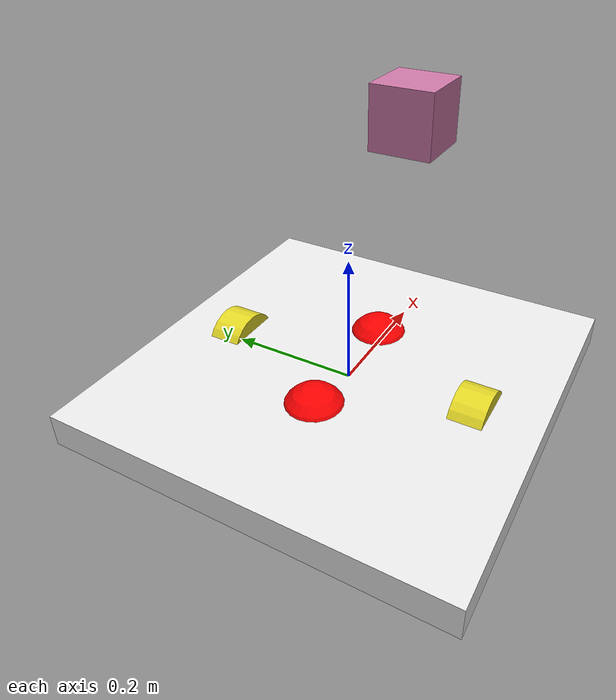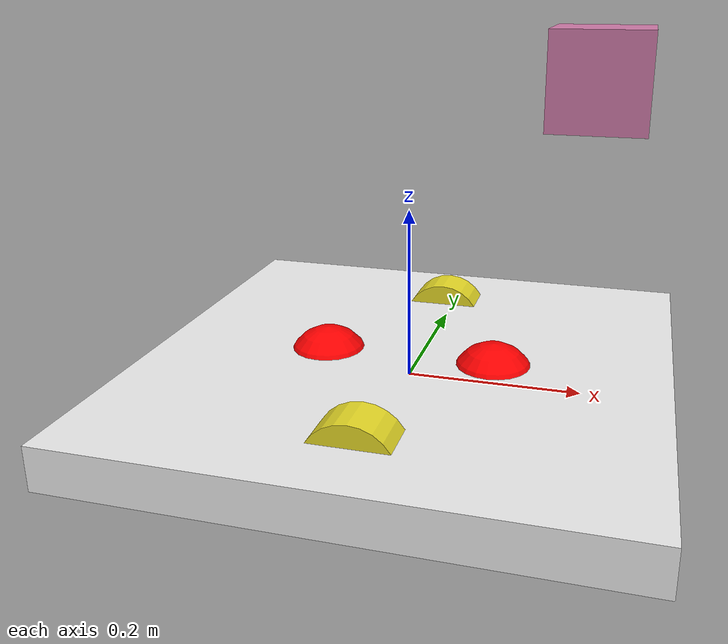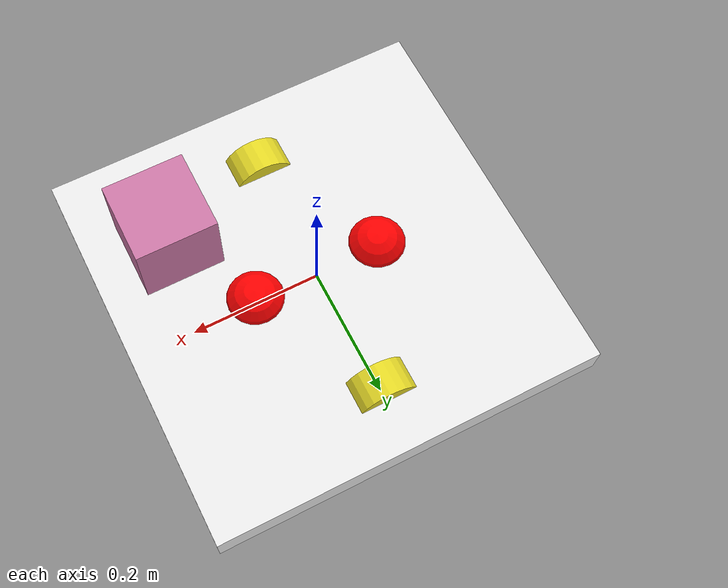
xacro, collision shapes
<?xml version='1.0'?>

<robot name="waiter_bot" xmlns:xacro="http://www.ros.org/wiki/xacro">

<xacro:property name="camera_link" value="0.01"/>
<xacro:property name="camera_mass" value="0.1"/>

<xacro:include filename="$(find waiter_bot)/urdf/bot.gazebo"/>

  <link name='chassis'>
    <pose>0 0 0 0 0 0</pose>

    <inertial>
      <mass value="1"/>
      <origin xyz="0.0 0 0.0" rpy=" 0 0 0"/>
      <inertia ixx="0.00416" ixy="0" ixz="0" iyy="0.01416" iyz="0" izz="0.0166"/>
    </inertial>

    <collision name='collision'>
    <origin xyz="0.0 0 0.0" rpy=" 0 0 0"/>
      <geometry>
        <box size=".6 .6 .05"/>
      </geometry>
    </collision>

    <visual name='chassis_visual'>
      <origin xyz="-0.205 -0.358 0" rpy="1.57 0 1.57"/>
      <geometry>
        <mesh filename="package://dualwheelbot/meshes/marses_robot.stl" scale="0.001 0.001 0.001"/>
      </geometry>
    </visual>

  </link>

<link name="custer_wheel">
    <inertial>
      <origin xyz="0.0 0.0 0.0" rpy="0.0 0.0 0.0"/>
      <mass value="0.1"/>
      <inertia ixx="0.002" ixy="0.0" ixz="0.0" iyy="0.002" iyz="0.0" izz="0.002"/>
    </inertial>

    <visual name="">
      <origin xyz="0.0 0.0 0.0" rpy="0.0 0.0 0.0"/>
      <geometry>
         <sphere radius="0.05"/>
      </geometry>

      <material name="">
        <color rgba="1.0 0.0 0.0 1.0"/>
        <texture filename=""/>
      </material>
    </visual>

    <collision>
      <origin xyz="0.0 0.0 0.0" rpy="0.0 0.0 0.0"/>
      <geometry>
        <sphere radius="0.05"/>
      </geometry>
    </collision>
  </link>

  <joint name="custer_joint" type="fixed">
    <origin xyz="-0.1 0.0 0" rpy="0.0 0.0 0.0"/>
    <parent link="chassis"/>
    <child link="custer_wheel"/>
    <axis xyz="0.0 0.0 0.0"/>
    <limit lower="0.0" upper="0.0" effort="0.0" velocity="0.0"/>
  </joint>

<link name="custer_wheel2">
    <inertial>
      <origin xyz="0.0 0.0 0.0" rpy="0.0 0.0 0.0"/>
      <mass value="0.1"/>
      <inertia ixx="0.002" ixy="0.0" ixz="0.0" iyy="0.002" iyz="0.0" izz="0.002"/>
    </inertial>

    <visual name="">
      <origin xyz="0.0 0.0 0.0" rpy="0.0 0.0 0.0"/>
      <geometry>
         <sphere radius="0.05"/>
      </geometry>

      <material name="">
        <color rgba="1.0 0.0 0.0 1.0"/>
        <texture filename=""/>
      </material>
    </visual>

    <collision>
      <origin xyz="0.0 0.0 0.0" rpy="0.0 0.0 0.0"/>
      <geometry>
        <sphere radius="0.05"/>
      </geometry>
    </collision>
  </link>

  <joint name="custer_joint2" type="fixed">
    <origin xyz="0.1 0.0 0" rpy="0.0 0.0 0.0"/>
    <parent link="chassis"/>
    <child link="custer_wheel2"/>
    <axis xyz="0.0 0.0 0.0"/>
    <limit lower="0.0" upper="0.0" effort="0.0" velocity="0.0"/>
  </joint>

  <link name="left_wheel">
    <!--origin xyz="0.1 0.13 0.1" rpy="0 1.5707 1.5707"/-->
    <collision name="collision">
      <origin xyz="0 0 0" rpy="0 1.5707 1.5707"/>
      <geometry>
        <cylinder radius="0.05" length="0.05"/>
      </geometry>

    </collision>

    <visual name="left_wheel_visual">
      <origin xyz="0 0 0" rpy="0 1.5707 1.5707"/>
      <geometry>
        <cylinder radius="0.05" length="0.05"/>

      </geometry>
      <material name="yellow"/>
    </visual>

    <inertial>
      <origin xyz="0 0 0" rpy="0 1.5707 1.5707"/>
      <mass value="1"/>
      <inertia ixx="0.005" ixy="0" ixz="0" iyy="0.0025" iyz="0" izz="0.0025"/>
    </inertial>

  </link>

  <link name="right_wheel">
    <!--origin xyz="0.1 -0.13 0.1" rpy="0 1.5707 1.5707"/-->
    <collision name="collision">
      <origin xyz="0 0 0" rpy="0 1.5707 1.5707"/>
      <geometry>
        <cylinder radius="0.05" length="0.05"/>
      </geometry>
      <surface>
        <friction>
          <ode>
            <mu>200</mu>
            <mu2>200</mu2>
            <slip1>0</slip1>
            <slip2>0</slip2>
          </ode>
        </friction>
      </surface>
    </collision>
    <visual name="right_wheel_visual">
      <origin xyz="0 0 0" rpy="0 1.5707 1.5707"/>
      <geometry>
        <cylinder radius="0.05" length="0.05"/>

      </geometry>
      <material name="yellow"/>
    </visual>
    <inertial>
      <origin xyz="0 0 0" rpy="0 1.5707 1.5707"/>
      <mass value="1"/>
      <inertia ixx="0.005" ixy="0" ixz="0" iyy="0.0025" iyz="0" izz="0.0025"/>
    </inertial>
  </link>

  <joint type="continuous" name="left_wheel_hinge">
    <origin xyz="0 0.2 0" rpy="0 0 0"/>
    <!--origin xyz="0.1 0.13 0" rpy="0 1.5707 1.5707"/-->
    <child link="left_wheel"/>
    <parent link="chassis"/>
    <axis xyz="0 1 0" rpy="0 0 0"/>
    <joint_properties damping="0.0" friction="0.0"/>
  </joint>

  <joint type="continuous" name="right_wheel_hinge">
    <origin xyz="0 -0.2 0" rpy="0 0 0"/>
    <!--origin xyz="0.1 -0.13 0" rpy="0 1.5707 1.5707"/-->
    <child link="right_wheel"/>
    <parent link="chassis"/>
    <axis xyz="0 1 0" rpy="0 0 0"/>
    <joint_properties damping="0.0" friction="0.0"/>
  </joint>

  <link name="stereo_camera_frame">
    <collision>
      <origin xyz="0 0 0" rpy="0 0 0"/>
      <geometry>
    <box size="${camera_link} ${camera_link} ${camera_link}"/>
      </geometry>
    </collision>

    <visual>
      <origin xyz="0 0 0" rpy="0 0 0"/>
      <geometry>
    <box size="${camera_link} ${camera_link} ${camera_link}"/>
      </geometry>
      <material name="red"/>
    </visual>

    <inertial>
      <mass value="${camera_mass}" />
      <origin xyz="0 0 0" rpy="0 0 0"/>
      <inertia ixx="1e-6" ixy="0" ixz="0" iyy="1e-6" iyz="0" izz="1e-6" />
    </inertial>
  </link>
  <joint name="stereo_camera_frame_joint" type="fixed">
    <axis xyz="0 1 0" />
    <origin xyz="0.2 0.0 0.3" rpy="0 0 0"/>
    <parent link="chassis"/>
    <child link="stereo_camera_frame"/>
  </joint>

  <!-- Hokuyo Laser -->
  <link name="hokuyo_link">
    <collision>
      <origin xyz="0 0 0" rpy="0 0 0"/>
      <geometry>
    <box size="0.1 0.1 0.1"/>
      </geometry>
    </collision>

    <visual>
      <origin xyz="0 0 0" rpy="0 0 0"/>
      <geometry>
        <mesh filename="package://dualwheelbot/meshes/hokuyo.dae"/>
      </geometry>
    </visual>

    <inertial>
      <mass value="1e-5" />
      <origin xyz="0 0 0" rpy="0 0 0"/>
      <inertia ixx="1e-6" ixy="0" ixz="0" iyy="1e-6" iyz="0" izz="1e-6" />
    </inertial>
  </link>

  <joint name="hokuyo_joint" type="fixed">
    <axis xyz="0 1 0" />
    <origin xyz="0.2 0 0.35" rpy="0 0 0"/>
    <parent link="chassis"/>
    <child link="hokuyo_link"/>
  </joint>

</robot>
